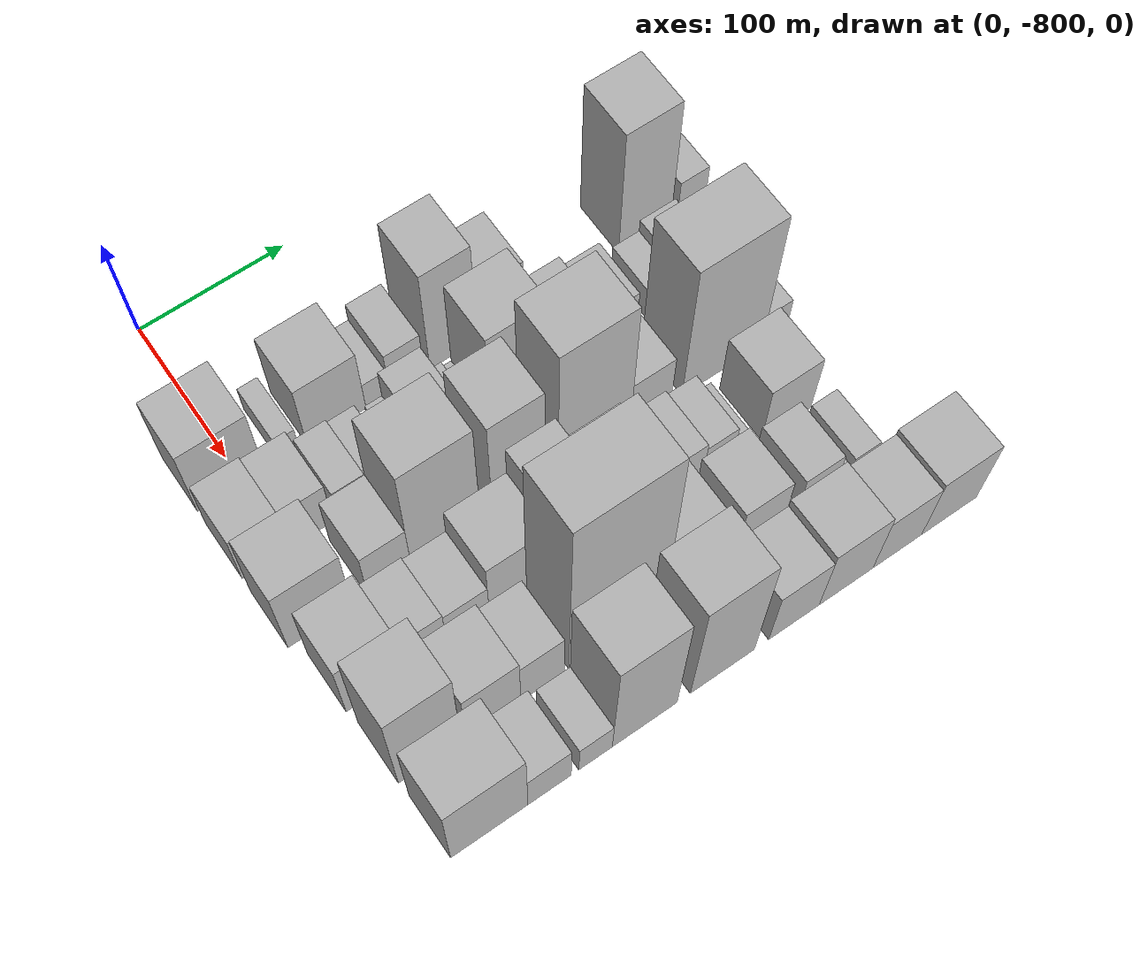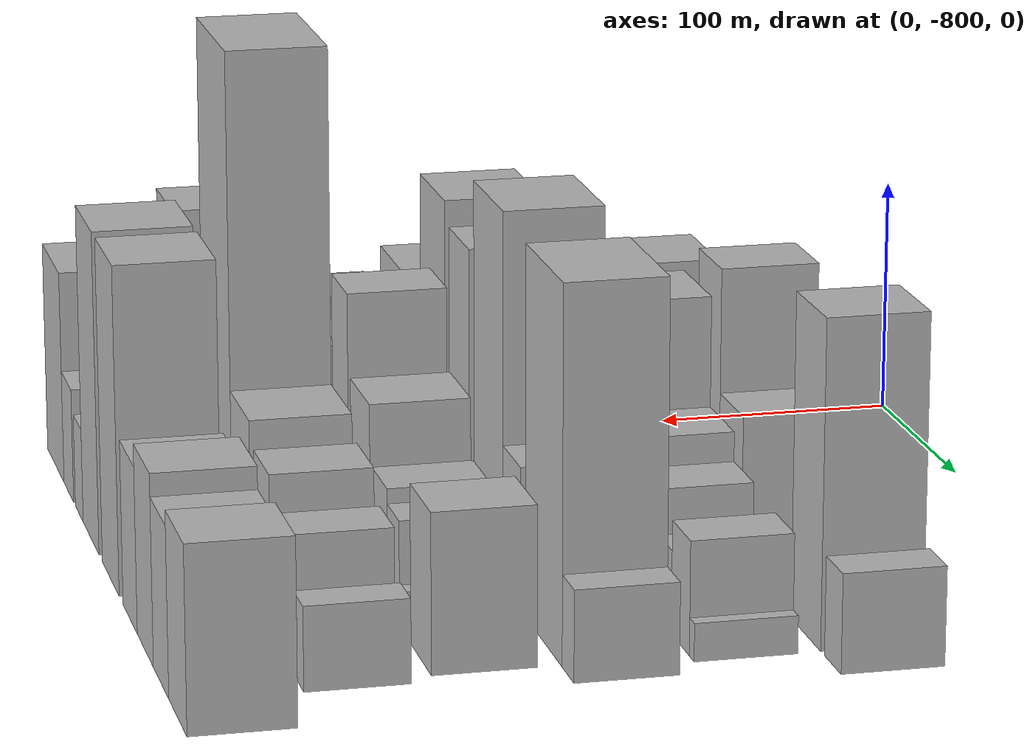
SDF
<sdf version="1.6">
 <world name="default">
  <model name="building_1">
   <static>1</static>
   <pose>100.0000 -807.7736 0 0.000000 0.000000 0.000000</pose>
   <link name="link">
    <pose>0 0 37.50 0 0 0</pose>
    <collision name="collision"><geometry><box><size>40.0000 44.4528 75.0000</size></box></geometry></collision>
    <visual name="visual">
     <cast_shadows>0</cast_shadows>
     <geometry><box><size>40.0000 44.4528 75.0000</size></box></geometry>
     <material>
      <script>
       <uri>model://HANNAS_wall/materials/scripts</uri>
       <uri>model://HANNAS_wall/materials/textures</uri>
       <name>vrc/HANNAS_wall</name>
      </script>
     </material>
    </visual>
   </link>
  </model>
  <model name="building_2">
   <static>1</static>
   <pose>100.0000 -768.8524 0 0.000000 0.000000 0.000000</pose>
   <link name="link">
    <pose>0 0 13.50 0 0 0</pose>
    <collision name="collision"><geometry><box><size>40.0000 13.3897 27.0000</size></box></geometry></collision>
    <visual name="visual">
     <cast_shadows>0</cast_shadows>
     <geometry><box><size>40.0000 13.3897 27.0000</size></box></geometry>
     <material>
      <script>
       <uri>model://HANNAS_wall/materials/scripts</uri>
       <uri>model://HANNAS_wall/materials/textures</uri>
       <name>vrc/HANNAS_wall</name>
      </script>
     </material>
    </visual>
   </link>
  </model>
  <model name="building_3">
   <static>1</static>
   <pose>100.0000 -736.9591 0 0.000000 0.000000 0.000000</pose>
   <link name="link">
    <pose>0 0 34.50 0 0 0</pose>
    <collision name="collision"><geometry><box><size>40.0000 40.3968 69.0000</size></box></geometry></collision>
    <visual name="visual">
     <cast_shadows>0</cast_shadows>
     <geometry><box><size>40.0000 40.3968 69.0000</size></box></geometry>
     <material>
      <script>
       <uri>model://HANNAS_wall/materials/scripts</uri>
       <uri>model://HANNAS_wall/materials/textures</uri>
       <name>vrc/HANNAS_wall</name>
      </script>
     </material>
    </visual>
   </link>
  </model>
  <model name="building_4">
   <static>1</static>
   <pose>100.0000 -708.5903 0 0.000000 0.000000 0.000000</pose>
   <link name="link">
    <pose>0 0 15.00 0 0 0</pose>
    <collision name="collision"><geometry><box><size>40.0000 16.3408 30.0000</size></box></geometry></collision>
    <visual name="visual">
     <cast_shadows>0</cast_shadows>
     <geometry><box><size>40.0000 16.3408 30.0000</size></box></geometry>
     <material>
      <script>
       <uri>model://HANNAS_wall/materials/scripts</uri>
       <uri>model://HANNAS_wall/materials/textures</uri>
       <name>vrc/HANNAS_wall</name>
      </script>
     </material>
    </visual>
   </link>
  </model>
  <model name="building_5">
   <static>1</static>
   <pose>100.0000 -688.3928 0 0.000000 0.000000 0.000000</pose>
   <link name="link">
    <pose>0 0 24.00 0 0 0</pose>
    <collision name="collision"><geometry><box><size>40.0000 24.0543 48.0000</size></box></geometry></collision>
    <visual name="visual">
     <cast_shadows>0</cast_shadows>
     <geometry><box><size>40.0000 24.0543 48.0000</size></box></geometry>
     <material>
      <script>
       <uri>model://HANNAS_wall/materials/scripts</uri>
       <uri>model://HANNAS_wall/materials/textures</uri>
       <name>vrc/HANNAS_wall</name>
      </script>
     </material>
    </visual>
   </link>
  </model>
  <model name="building_6">
   <static>1</static>
   <pose>100.0000 -655.6085 0 0.000000 0.000000 0.000000</pose>
   <link name="link">
    <pose>0 0 55.50 0 0 0</pose>
    <collision name="collision"><geometry><box><size>40.0000 33.5143 111.0000</size></box></geometry></collision>
    <visual name="visual">
     <cast_shadows>0</cast_shadows>
     <geometry><box><size>40.0000 33.5143 111.0000</size></box></geometry>
     <material>
      <script>
       <uri>model://HANNAS_wall/materials/scripts</uri>
       <uri>model://HANNAS_wall/materials/textures</uri>
       <name>vrc/HANNAS_wall</name>
      </script>
     </material>
    </visual>
   </link>
  </model>
  <model name="building_7">
   <static>1</static>
   <pose>100.0000 -622.0648 0 0.000000 0.000000 0.000000</pose>
   <link name="link">
    <pose>0 0 30.00 0 0 0</pose>
    <collision name="collision"><geometry><box><size>40.0000 33.5730 60.0000</size></box></geometry></collision>
    <visual name="visual">
     <cast_shadows>0</cast_shadows>
     <geometry><box><size>40.0000 33.5730 60.0000</size></box></geometry>
     <material>
      <script>
       <uri>model://HANNAS_wall/materials/scripts</uri>
       <uri>model://HANNAS_wall/materials/textures</uri>
       <name>vrc/HANNAS_wall</name>
      </script>
     </material>
    </visual>
   </link>
  </model>
  <model name="building_8">
   <static>1</static>
   <pose>100.0000 -516.9023 0 0.000000 0.000000 0.000000</pose>
   <link name="link">
    <pose>0 0 64.50 0 0 0</pose>
    <collision name="collision"><geometry><box><size>40.0000 38.9173 129.0000</size></box></geometry></collision>
    <visual name="visual">
     <cast_shadows>0</cast_shadows>
     <geometry><box><size>40.0000 38.9173 129.0000</size></box></geometry>
     <material>
      <script>
       <uri>model://HANNAS_wall/materials/scripts</uri>
       <uri>model://HANNAS_wall/materials/textures</uri>
       <name>vrc/HANNAS_wall</name>
      </script>
     </material>
    </visual>
   </link>
  </model>
  <model name="building_9">
   <static>1</static>
   <pose>100.0000 -481.9084 0 0.000000 0.000000 0.000000</pose>
   <link name="link">
    <pose>0 0 19.50 0 0 0</pose>
    <collision name="collision"><geometry><box><size>40.0000 21.0706 39.0000</size></box></geometry></collision>
    <visual name="visual">
     <cast_shadows>0</cast_shadows>
     <geometry><box><size>40.0000 21.0706 39.0000</size></box></geometry>
     <material>
      <script>
       <uri>model://HANNAS_wall/materials/scripts</uri>
       <uri>model://HANNAS_wall/materials/textures</uri>
       <name>vrc/HANNAS_wall</name>
      </script>
     </material>
    </visual>
   </link>
  </model>
  <model name="building_52">
   <static>1</static>
   <pose>149.0000 -814.5044 0 0.000000 0.000000 0.000000</pose>
   <link name="link">
    <pose>0 0 27.00 0 0 0</pose>
    <collision name="collision"><geometry><box><size>40.0000 30.9913 54.0000</size></box></geometry></collision>
    <visual name="visual">
     <cast_shadows>0</cast_shadows>
     <geometry><box><size>40.0000 30.9913 54.0000</size></box></geometry>
     <material>
      <script>
       <uri>model://HANNAS_wall/materials/scripts</uri>
       <uri>model://HANNAS_wall/materials/textures</uri>
       <name>vrc/HANNAS_wall</name>
      </script>
     </material>
    </visual>
   </link>
  </model>
  <model name="building_53">
   <static>1</static>
   <pose>149.0000 -784.4596 0 0.000000 0.000000 0.000000</pose>
   <link name="link">
    <pose>0 0 25.50 0 0 0</pose>
    <collision name="collision"><geometry><box><size>40.0000 29.0982 51.0000</size></box></geometry></collision>
    <visual name="visual">
     <cast_shadows>0</cast_shadows>
     <geometry><box><size>40.0000 29.0982 51.0000</size></box></geometry>
     <material>
      <script>
       <uri>model://HANNAS_wall/materials/scripts</uri>
       <uri>model://HANNAS_wall/materials/textures</uri>
       <name>vrc/HANNAS_wall</name>
      </script>
     </material>
    </visual>
   </link>
  </model>
  <model name="building_54">
   <static>1</static>
   <pose>149.0000 -756.2330 0 0.000000 0.000000 0.000000</pose>
   <link name="link">
    <pose>0 0 18.00 0 0 0</pose>
    <collision name="collision"><geometry><box><size>40.0000 21.3550 36.0000</size></box></geometry></collision>
    <visual name="visual">
     <cast_shadows>0</cast_shadows>
     <geometry><box><size>40.0000 21.3550 36.0000</size></box></geometry>
     <material>
      <script>
       <uri>model://HANNAS_wall/materials/scripts</uri>
       <uri>model://HANNAS_wall/materials/textures</uri>
       <name>vrc/HANNAS_wall</name>
      </script>
     </material>
    </visual>
   </link>
  </model>
  <model name="building_55">
   <static>1</static>
   <pose>149.0000 -736.3124 0 0.000000 0.000000 0.000000</pose>
   <link name="link">
    <pose>0 0 16.50 0 0 0</pose>
    <collision name="collision"><geometry><box><size>40.0000 18.4861 33.0000</size></box></geometry></collision>
    <visual name="visual">
     <cast_shadows>0</cast_shadows>
     <geometry><box><size>40.0000 18.4861 33.0000</size></box></geometry>
     <material>
      <script>
       <uri>model://HANNAS_wall/materials/scripts</uri>
       <uri>model://HANNAS_wall/materials/textures</uri>
       <name>vrc/HANNAS_wall</name>
      </script>
     </material>
    </visual>
   </link>
  </model>
  <model name="building_56">
   <static>1</static>
   <pose>149.0000 -715.2313 0 0.000000 0.000000 0.000000</pose>
   <link name="link">
    <pose>0 0 12.00 0 0 0</pose>
    <collision name="collision"><geometry><box><size>40.0000 11.6762 24.0000</size></box></geometry></collision>
    <visual name="visual">
     <cast_shadows>0</cast_shadows>
     <geometry><box><size>40.0000 11.6762 24.0000</size></box></geometry>
     <material>
      <script>
       <uri>model://HANNAS_wall/materials/scripts</uri>
       <uri>model://HANNAS_wall/materials/textures</uri>
       <name>vrc/HANNAS_wall</name>
      </script>
     </material>
    </visual>
   </link>
  </model>
  <model name="building_57">
   <static>1</static>
   <pose>149.0000 -695.3278 0 0.000000 0.000000 0.000000</pose>
   <link name="link">
    <pose>0 0 27.00 0 0 0</pose>
    <collision name="collision"><geometry><box><size>40.0000 28.1309 54.0000</size></box></geometry></collision>
    <visual name="visual">
     <cast_shadows>0</cast_shadows>
     <geometry><box><size>40.0000 28.1309 54.0000</size></box></geometry>
     <material>
      <script>
       <uri>model://HANNAS_wall/materials/scripts</uri>
       <uri>model://HANNAS_wall/materials/textures</uri>
       <name>vrc/HANNAS_wall</name>
      </script>
     </material>
    </visual>
   </link>
  </model>
  <model name="building_58">
   <static>1</static>
   <pose>149.0000 -673.7232 0 0.000000 0.000000 0.000000</pose>
   <link name="link">
    <pose>0 0 10.50 0 0 0</pose>
    <collision name="collision"><geometry><box><size>40.0000 9.0783 21.0000</size></box></geometry></collision>
    <visual name="visual">
     <cast_shadows>0</cast_shadows>
     <geometry><box><size>40.0000 9.0783 21.0000</size></box></geometry>
     <material>
      <script>
       <uri>model://HANNAS_wall/materials/scripts</uri>
       <uri>model://HANNAS_wall/materials/textures</uri>
       <name>vrc/HANNAS_wall</name>
      </script>
     </material>
    </visual>
   </link>
  </model>
  <model name="building_59">
   <static>1</static>
   <pose>149.0000 -665.8663 0 0.000000 0.000000 0.000000</pose>
   <link name="link">
    <pose>0 0 7.50 0 0 0</pose>
    <collision name="collision"><geometry><box><size>40.0000 6.6355 15.0000</size></box></geometry></collision>
    <visual name="visual">
     <cast_shadows>0</cast_shadows>
     <geometry><box><size>40.0000 6.6355 15.0000</size></box></geometry>
     <material>
      <script>
       <uri>model://HANNAS_wall/materials/scripts</uri>
       <uri>model://HANNAS_wall/materials/textures</uri>
       <name>vrc/HANNAS_wall</name>
      </script>
     </material>
    </visual>
   </link>
  </model>
  <model name="building_60">
   <static>1</static>
   <pose>149.0000 -641.8567 0 0.000000 0.000000 0.000000</pose>
   <link name="link">
    <pose>0 0 52.50 0 0 0</pose>
    <collision name="collision"><geometry><box><size>40.0000 41.3837 105.0000</size></box></geometry></collision>
    <visual name="visual">
     <cast_shadows>0</cast_shadows>
     <geometry><box><size>40.0000 41.3837 105.0000</size></box></geometry>
     <material>
      <script>
       <uri>model://HANNAS_wall/materials/scripts</uri>
       <uri>model://HANNAS_wall/materials/textures</uri>
       <name>vrc/HANNAS_wall</name>
      </script>
     </material>
    </visual>
   </link>
  </model>
  <model name="building_61">
   <static>1</static>
   <pose>149.0000 -603.7978 0 0.000000 0.000000 0.000000</pose>
   <link name="link">
    <pose>0 0 30.00 0 0 0</pose>
    <collision name="collision"><geometry><box><size>40.0000 34.7339 60.0000</size></box></geometry></collision>
    <visual name="visual">
     <cast_shadows>0</cast_shadows>
     <geometry><box><size>40.0000 34.7339 60.0000</size></box></geometry>
     <material>
      <script>
       <uri>model://HANNAS_wall/materials/scripts</uri>
       <uri>model://HANNAS_wall/materials/textures</uri>
       <name>vrc/HANNAS_wall</name>
      </script>
     </material>
    </visual>
   </link>
  </model>
  <model name="building_62">
   <static>1</static>
   <pose>149.0000 -572.4015 0 0.000000 0.000000 0.000000</pose>
   <link name="link">
    <pose>0 0 24.00 0 0 0</pose>
    <collision name="collision"><geometry><box><size>40.0000 28.0587 48.0000</size></box></geometry></collision>
    <visual name="visual">
     <cast_shadows>0</cast_shadows>
     <geometry><box><size>40.0000 28.0587 48.0000</size></box></geometry>
     <material>
      <script>
       <uri>model://HANNAS_wall/materials/scripts</uri>
       <uri>model://HANNAS_wall/materials/textures</uri>
       <name>vrc/HANNAS_wall</name>
      </script>
     </material>
    </visual>
   </link>
  </model>
  <model name="building_63">
   <static>1</static>
   <pose>149.0000 -538.8149 0 0.000000 0.000000 0.000000</pose>
   <link name="link">
    <pose>0 0 16.50 0 0 0</pose>
    <collision name="collision"><geometry><box><size>40.0000 19.1145 33.0000</size></box></geometry></collision>
    <visual name="visual">
     <cast_shadows>0</cast_shadows>
     <geometry><box><size>40.0000 19.1145 33.0000</size></box></geometry>
     <material>
      <script>
       <uri>model://HANNAS_wall/materials/scripts</uri>
       <uri>model://HANNAS_wall/materials/textures</uri>
       <name>vrc/HANNAS_wall</name>
      </script>
     </material>
    </visual>
   </link>
  </model>
  <model name="building_64">
   <static>1</static>
   <pose>149.0000 -516.3591 0 0.000000 0.000000 0.000000</pose>
   <link name="link">
    <pose>0 0 22.50 0 0 0</pose>
    <collision name="collision"><geometry><box><size>40.0000 25.7971 45.0000</size></box></geometry></collision>
    <visual name="visual">
     <cast_shadows>0</cast_shadows>
     <geometry><box><size>40.0000 25.7971 45.0000</size></box></geometry>
     <material>
      <script>
       <uri>model://HANNAS_wall/materials/scripts</uri>
       <uri>model://HANNAS_wall/materials/textures</uri>
       <name>vrc/HANNAS_wall</name>
      </script>
     </material>
    </visual>
   </link>
  </model>
  <model name="building_65">
   <static>1</static>
   <pose>149.0000 -500.1712 0 0.000000 0.000000 0.000000</pose>
   <link name="link">
    <pose>0 0 7.50 0 0 0</pose>
    <collision name="collision"><geometry><box><size>40.0000 6.5786 15.0000</size></box></geometry></collision>
    <visual name="visual">
     <cast_shadows>0</cast_shadows>
     <geometry><box><size>40.0000 6.5786 15.0000</size></box></geometry>
     <material>
      <script>
       <uri>model://HANNAS_wall/materials/scripts</uri>
       <uri>model://HANNAS_wall/materials/textures</uri>
       <name>vrc/HANNAS_wall</name>
      </script>
     </material>
    </visual>
   </link>
  </model>
  <model name="building_107">
   <static>1</static>
   <pose>198.0000 -808.9158 0 0.000000 0.000000 0.000000</pose>
   <link name="link">
    <pose>0 0 39.00 0 0 0</pose>
    <collision name="collision"><geometry><box><size>40.0000 42.1683 78.0000</size></box></geometry></collision>
    <visual name="visual">
     <cast_shadows>0</cast_shadows>
     <geometry><box><size>40.0000 42.1683 78.0000</size></box></geometry>
     <material>
      <script>
       <uri>model://HANNAS_wall/materials/scripts</uri>
       <uri>model://HANNAS_wall/materials/textures</uri>
       <name>vrc/HANNAS_wall</name>
      </script>
     </material>
    </visual>
   </link>
  </model>
  <model name="building_108">
   <static>1</static>
   <pose>198.0000 -763.2630 0 0.000000 0.000000 0.000000</pose>
   <link name="link">
    <pose>0 0 28.50 0 0 0</pose>
    <collision name="collision"><geometry><box><size>40.0000 29.1372 57.0000</size></box></geometry></collision>
    <visual name="visual">
     <cast_shadows>0</cast_shadows>
     <geometry><box><size>40.0000 29.1372 57.0000</size></box></geometry>
     <material>
      <script>
       <uri>model://HANNAS_wall/materials/scripts</uri>
       <uri>model://HANNAS_wall/materials/textures</uri>
       <name>vrc/HANNAS_wall</name>
      </script>
     </material>
    </visual>
   </link>
  </model>
  <model name="building_109">
   <static>1</static>
   <pose>198.0000 -725.3623 0 0.000000 0.000000 0.000000</pose>
   <link name="link">
    <pose>0 0 64.50 0 0 0</pose>
    <collision name="collision"><geometry><box><size>40.0000 46.6643 129.0000</size></box></geometry></collision>
    <visual name="visual">
     <cast_shadows>0</cast_shadows>
     <geometry><box><size>40.0000 46.6643 129.0000</size></box></geometry>
     <material>
      <script>
       <uri>model://HANNAS_wall/materials/scripts</uri>
       <uri>model://HANNAS_wall/materials/textures</uri>
       <name>vrc/HANNAS_wall</name>
      </script>
     </material>
    </visual>
   </link>
  </model>
  <model name="building_110">
   <static>1</static>
   <pose>198.0000 -675.9680 0 0.000000 0.000000 0.000000</pose>
   <link name="link">
    <pose>0 0 60.00 0 0 0</pose>
    <collision name="collision"><geometry><box><size>40.0000 36.1243 120.0000</size></box></geometry></collision>
    <visual name="visual">
     <cast_shadows>0</cast_shadows>
     <geometry><box><size>40.0000 36.1243 120.0000</size></box></geometry>
     <material>
      <script>
       <uri>model://HANNAS_wall/materials/scripts</uri>
       <uri>model://HANNAS_wall/materials/textures</uri>
       <name>vrc/HANNAS_wall</name>
      </script>
     </material>
    </visual>
   </link>
  </model>
  <model name="building_111">
   <static>1</static>
   <pose>198.0000 -623.5885 0 0.000000 0.000000 0.000000</pose>
   <link name="link">
    <pose>0 0 75.00 0 0 0</pose>
    <collision name="collision"><geometry><box><size>40.0000 50.6347 150.0000</size></box></geometry></collision>
    <visual name="visual">
     <cast_shadows>0</cast_shadows>
     <geometry><box><size>40.0000 50.6347 150.0000</size></box></geometry>
     <material>
      <script>
       <uri>model://HANNAS_wall/materials/scripts</uri>
       <uri>model://HANNAS_wall/materials/textures</uri>
       <name>vrc/HANNAS_wall</name>
      </script>
     </material>
    </visual>
   </link>
  </model>
  <model name="building_112">
   <static>1</static>
   <pose>198.0000 -583.6322 0 0.000000 0.000000 0.000000</pose>
   <link name="link">
    <pose>0 0 28.50 0 0 0</pose>
    <collision name="collision"><geometry><box><size>40.0000 29.2778 57.0000</size></box></geometry></collision>
    <visual name="visual">
     <cast_shadows>0</cast_shadows>
     <geometry><box><size>40.0000 29.2778 57.0000</size></box></geometry>
     <material>
      <script>
       <uri>model://HANNAS_wall/materials/scripts</uri>
       <uri>model://HANNAS_wall/materials/textures</uri>
       <name>vrc/HANNAS_wall</name>
      </script>
     </material>
    </visual>
   </link>
  </model>
  <model name="building_113">
   <static>1</static>
   <pose>198.0000 -531.6468 0 0.000000 0.000000 0.000000</pose>
   <link name="link">
    <pose>0 0 73.50 0 0 0</pose>
    <collision name="collision"><geometry><box><size>40.0000 58.6928 147.0000</size></box></geometry></collision>
    <visual name="visual">
     <cast_shadows>0</cast_shadows>
     <geometry><box><size>40.0000 58.6928 147.0000</size></box></geometry>
     <material>
      <script>
       <uri>model://HANNAS_wall/materials/scripts</uri>
       <uri>model://HANNAS_wall/materials/textures</uri>
       <name>vrc/HANNAS_wall</name>
      </script>
     </material>
    </visual>
   </link>
  </model>
  <model name="building_114">
   <static>1</static>
   <pose>198.0000 -493.2641 0 0.000000 0.000000 0.000000</pose>
   <link name="link">
    <pose>0 0 18.00 0 0 0</pose>
    <collision name="collision"><geometry><box><size>40.0000 18.0727 36.0000</size></box></geometry></collision>
    <visual name="visual">
     <cast_shadows>0</cast_shadows>
     <geometry><box><size>40.0000 18.0727 36.0000</size></box></geometry>
     <material>
      <script>
       <uri>model://HANNAS_wall/materials/scripts</uri>
       <uri>model://HANNAS_wall/materials/textures</uri>
       <name>vrc/HANNAS_wall</name>
      </script>
     </material>
    </visual>
   </link>
  </model>
  <model name="building_158">
   <static>1</static>
   <pose>247.0000 -804.5287 0 0.000000 0.000000 0.000000</pose>
   <link name="link">
    <pose>0 0 34.50 0 0 0</pose>
    <collision name="collision"><geometry><box><size>40.0000 36.9425 69.0000</size></box></geometry></collision>
    <visual name="visual">
     <cast_shadows>0</cast_shadows>
     <geometry><box><size>40.0000 36.9425 69.0000</size></box></geometry>
     <material>
      <script>
       <uri>model://HANNAS_wall/materials/scripts</uri>
       <uri>model://HANNAS_wall/materials/textures</uri>
       <name>vrc/HANNAS_wall</name>
      </script>
     </material>
    </visual>
   </link>
  </model>
  <model name="building_159">
   <static>1</static>
   <pose>247.0000 -771.7915 0 0.000000 0.000000 0.000000</pose>
   <link name="link">
    <pose>0 0 25.50 0 0 0</pose>
    <collision name="collision"><geometry><box><size>40.0000 28.5320 51.0000</size></box></geometry></collision>
    <visual name="visual">
     <cast_shadows>0</cast_shadows>
     <geometry><box><size>40.0000 28.5320 51.0000</size></box></geometry>
     <material>
      <script>
       <uri>model://HANNAS_wall/materials/scripts</uri>
       <uri>model://HANNAS_wall/materials/textures</uri>
       <name>vrc/HANNAS_wall</name>
      </script>
     </material>
    </visual>
   </link>
  </model>
  <model name="building_160">
   <static>1</static>
   <pose>247.0000 -743.3118 0 0.000000 0.000000 0.000000</pose>
   <link name="link">
    <pose>0 0 24.00 0 0 0</pose>
    <collision name="collision"><geometry><box><size>40.0000 28.4275 48.0000</size></box></geometry></collision>
    <visual name="visual">
     <cast_shadows>0</cast_shadows>
     <geometry><box><size>40.0000 28.4275 48.0000</size></box></geometry>
     <material>
      <script>
       <uri>model://HANNAS_wall/materials/scripts</uri>
       <uri>model://HANNAS_wall/materials/textures</uri>
       <name>vrc/HANNAS_wall</name>
      </script>
     </material>
    </visual>
   </link>
  </model>
  <model name="building_161">
   <static>1</static>
   <pose>247.0000 -709.0145 0 0.000000 0.000000 0.000000</pose>
   <link name="link">
    <pose>0 0 37.50 0 0 0</pose>
    <collision name="collision"><geometry><box><size>40.0000 40.1672 75.0000</size></box></geometry></collision>
    <visual name="visual">
     <cast_shadows>0</cast_shadows>
     <geometry><box><size>40.0000 40.1672 75.0000</size></box></geometry>
     <material>
      <script>
       <uri>model://HANNAS_wall/materials/scripts</uri>
       <uri>model://HANNAS_wall/materials/textures</uri>
       <name>vrc/HANNAS_wall</name>
      </script>
     </material>
    </visual>
   </link>
  </model>
  <model name="building_162">
   <static>1</static>
   <pose>247.0000 -673.1171 0 0.000000 0.000000 0.000000</pose>
   <link name="link">
    <pose>0 0 52.50 0 0 0</pose>
    <collision name="collision"><geometry><box><size>40.0000 31.6276 105.0000</size></box></geometry></collision>
    <visual name="visual">
     <cast_shadows>0</cast_shadows>
     <geometry><box><size>40.0000 31.6276 105.0000</size></box></geometry>
     <material>
      <script>
       <uri>model://HANNAS_wall/materials/scripts</uri>
       <uri>model://HANNAS_wall/materials/textures</uri>
       <name>vrc/HANNAS_wall</name>
      </script>
     </material>
    </visual>
   </link>
  </model>
  <model name="building_163">
   <static>1</static>
   <pose>247.0000 -633.6280 0 0.000000 0.000000 0.000000</pose>
   <link name="link">
    <pose>0 0 36.00 0 0 0</pose>
    <collision name="collision"><geometry><box><size>40.0000 37.3506 72.0000</size></box></geometry></collision>
    <visual name="visual">
     <cast_shadows>0</cast_shadows>
     <geometry><box><size>40.0000 37.3506 72.0000</size></box></geometry>
     <material>
      <script>
       <uri>model://HANNAS_wall/materials/scripts</uri>
       <uri>model://HANNAS_wall/materials/textures</uri>
       <name>vrc/HANNAS_wall</name>
      </script>
     </material>
    </visual>
   </link>
  </model>
  <model name="building_164">
   <static>1</static>
   <pose>247.0000 -596.6864 0 0.000000 0.000000 0.000000</pose>
   <link name="link">
    <pose>0 0 24.00 0 0 0</pose>
    <collision name="collision"><geometry><box><size>40.0000 28.5326 48.0000</size></box></geometry></collision>
    <visual name="visual">
     <cast_shadows>0</cast_shadows>
     <geometry><box><size>40.0000 28.5326 48.0000</size></box></geometry>
     <material>
      <script>
       <uri>model://HANNAS_wall/materials/scripts</uri>
       <uri>model://HANNAS_wall/materials/textures</uri>
       <name>vrc/HANNAS_wall</name>
      </script>
     </material>
    </visual>
   </link>
  </model>
  <model name="building_165">
   <static>1</static>
   <pose>247.0000 -571.5373 0 0.000000 0.000000 0.000000</pose>
   <link name="link">
    <pose>0 0 21.00 0 0 0</pose>
    <collision name="collision"><geometry><box><size>40.0000 21.7656 42.0000</size></box></geometry></collision>
    <visual name="visual">
     <cast_shadows>0</cast_shadows>
     <geometry><box><size>40.0000 21.7656 42.0000</size></box></geometry>
     <material>
      <script>
       <uri>model://HANNAS_wall/materials/scripts</uri>
       <uri>model://HANNAS_wall/materials/textures</uri>
       <name>vrc/HANNAS_wall</name>
      </script>
     </material>
    </visual>
   </link>
  </model>
  <model name="building_166">
   <static>1</static>
   <pose>247.0000 -552.4809 0 0.000000 0.000000 0.000000</pose>
   <link name="link">
    <pose>0 0 9.00 0 0 0</pose>
    <collision name="collision"><geometry><box><size>40.0000 8.3473 18.0000</size></box></geometry></collision>
    <visual name="visual">
     <cast_shadows>0</cast_shadows>
     <geometry><box><size>40.0000 8.3473 18.0000</size></box></geometry>
     <material>
      <script>
       <uri>model://HANNAS_wall/materials/scripts</uri>
       <uri>model://HANNAS_wall/materials/textures</uri>
       <name>vrc/HANNAS_wall</name>
      </script>
     </material>
    </visual>
   </link>
  </model>
  <model name="building_167">
   <static>1</static>
   <pose>247.0000 -522.2415 0 0.000000 0.000000 0.000000</pose>
   <link name="link">
    <pose>0 0 31.50 0 0 0</pose>
    <collision name="collision"><geometry><box><size>40.0000 36.1315 63.0000</size></box></geometry></collision>
    <visual name="visual">
     <cast_shadows>0</cast_shadows>
     <geometry><box><size>40.0000 36.1315 63.0000</size></box></geometry>
     <material>
      <script>
       <uri>model://HANNAS_wall/materials/scripts</uri>
       <uri>model://HANNAS_wall/materials/textures</uri>
       <name>vrc/HANNAS_wall</name>
      </script>
     </material>
    </visual>
   </link>
  </model>
  <model name="building_204">
   <static>1</static>
   <pose>296.0000 -800.7549 0 0.000000 0.000000 0.000000</pose>
   <link name="link">
    <pose>0 0 55.50 0 0 0</pose>
    <collision name="collision"><geometry><box><size>40.0000 40.4901 111.0000</size></box></geometry></collision>
    <visual name="visual">
     <cast_shadows>0</cast_shadows>
     <geometry><box><size>40.0000 40.4901 111.0000</size></box></geometry>
     <material>
      <script>
       <uri>model://HANNAS_wall/materials/scripts</uri>
       <uri>model://HANNAS_wall/materials/textures</uri>
       <name>vrc/HANNAS_wall</name>
      </script>
     </material>
    </visual>
   </link>
  </model>
  <model name="building_205">
   <static>1</static>
   <pose>296.0000 -759.6048 0 0.000000 0.000000 0.000000</pose>
   <link name="link">
    <pose>0 0 33.00 0 0 0</pose>
    <collision name="collision"><geometry><box><size>40.0000 35.8101 66.0000</size></box></geometry></collision>
    <visual name="visual">
     <cast_shadows>0</cast_shadows>
     <geometry><box><size>40.0000 35.8101 66.0000</size></box></geometry>
     <material>
      <script>
       <uri>model://HANNAS_wall/materials/scripts</uri>
       <uri>model://HANNAS_wall/materials/textures</uri>
       <name>vrc/HANNAS_wall</name>
      </script>
     </material>
    </visual>
   </link>
  </model>
  <model name="building_206">
   <static>1</static>
   <pose>296.0000 -727.3717 0 0.000000 0.000000 0.000000</pose>
   <link name="link">
    <pose>0 0 28.50 0 0 0</pose>
    <collision name="collision"><geometry><box><size>40.0000 28.6562 57.0000</size></box></geometry></collision>
    <visual name="visual">
     <cast_shadows>0</cast_shadows>
     <geometry><box><size>40.0000 28.6562 57.0000</size></box></geometry>
     <material>
      <script>
       <uri>model://HANNAS_wall/materials/scripts</uri>
       <uri>model://HANNAS_wall/materials/textures</uri>
       <name>vrc/HANNAS_wall</name>
      </script>
     </material>
    </visual>
   </link>
  </model>
  <model name="building_207">
   <static>1</static>
   <pose>296.0000 -677.7748 0 0.000000 0.000000 0.000000</pose>
   <link name="link">
    <pose>0 0 103.50 0 0 0</pose>
    <collision name="collision"><geometry><box><size>40.0000 64.5375 207.0000</size></box></geometry></collision>
    <visual name="visual">
     <cast_shadows>0</cast_shadows>
     <geometry><box><size>40.0000 64.5375 207.0000</size></box></geometry>
     <material>
      <script>
       <uri>model://HANNAS_wall/materials/scripts</uri>
       <uri>model://HANNAS_wall/materials/textures</uri>
       <name>vrc/HANNAS_wall</name>
      </script>
     </material>
    </visual>
   </link>
  </model>
  <model name="building_208">
   <static>1</static>
   <pose>296.0000 -624.8883 0 0.000000 0.000000 0.000000</pose>
   <link name="link">
    <pose>0 0 36.00 0 0 0</pose>
    <collision name="collision"><geometry><box><size>40.0000 41.2356 72.0000</size></box></geometry></collision>
    <visual name="visual">
     <cast_shadows>0</cast_shadows>
     <geometry><box><size>40.0000 41.2356 72.0000</size></box></geometry>
     <material>
      <script>
       <uri>model://HANNAS_wall/materials/scripts</uri>
       <uri>model://HANNAS_wall/materials/textures</uri>
       <name>vrc/HANNAS_wall</name>
      </script>
     </material>
    </visual>
   </link>
  </model>
  <model name="building_209">
   <static>1</static>
   <pose>296.0000 -579.0632 0 0.000000 0.000000 0.000000</pose>
   <link name="link">
    <pose>0 0 31.50 0 0 0</pose>
    <collision name="collision"><geometry><box><size>40.0000 32.4146 63.0000</size></box></geometry></collision>
    <visual name="visual">
     <cast_shadows>0</cast_shadows>
     <geometry><box><size>40.0000 32.4146 63.0000</size></box></geometry>
     <material>
      <script>
       <uri>model://HANNAS_wall/materials/scripts</uri>
       <uri>model://HANNAS_wall/materials/textures</uri>
       <name>vrc/HANNAS_wall</name>
      </script>
     </material>
    </visual>
   </link>
  </model>
  <model name="building_210">
   <static>1</static>
   <pose>296.0000 -556.3377 0 0.000000 0.000000 0.000000</pose>
   <link name="link">
    <pose>0 0 7.50 0 0 0</pose>
    <collision name="collision"><geometry><box><size>40.0000 7.0365 15.0000</size></box></geometry></collision>
    <visual name="visual">
     <cast_shadows>0</cast_shadows>
     <geometry><box><size>40.0000 7.0365 15.0000</size></box></geometry>
     <material>
      <script>
       <uri>model://HANNAS_wall/materials/scripts</uri>
       <uri>model://HANNAS_wall/materials/textures</uri>
       <name>vrc/HANNAS_wall</name>
      </script>
     </material>
    </visual>
   </link>
  </model>
  <model name="building_211">
   <static>1</static>
   <pose>296.0000 -539.3824 0 0.000000 0.000000 0.000000</pose>
   <link name="link">
    <pose>0 0 25.50 0 0 0</pose>
    <collision name="collision"><geometry><box><size>40.0000 26.8741 51.0000</size></box></geometry></collision>
    <visual name="visual">
     <cast_shadows>0</cast_shadows>
     <geometry><box><size>40.0000 26.8741 51.0000</size></box></geometry>
     <material>
      <script>
       <uri>model://HANNAS_wall/materials/scripts</uri>
       <uri>model://HANNAS_wall/materials/textures</uri>
       <name>vrc/HANNAS_wall</name>
      </script>
     </material>
    </visual>
   </link>
  </model>
  <model name="building_212">
   <static>1</static>
   <pose>296.0000 -520.7177 0 0.000000 0.000000 0.000000</pose>
   <link name="link">
    <pose>0 0 10.50 0 0 0</pose>
    <collision name="collision"><geometry><box><size>40.0000 10.4553 21.0000</size></box></geometry></collision>
    <visual name="visual">
     <cast_shadows>0</cast_shadows>
     <geometry><box><size>40.0000 10.4553 21.0000</size></box></geometry>
     <material>
      <script>
       <uri>model://HANNAS_wall/materials/scripts</uri>
       <uri>model://HANNAS_wall/materials/textures</uri>
       <name>vrc/HANNAS_wall</name>
      </script>
     </material>
    </visual>
   </link>
  </model>
  <model name="building_213">
   <static>1</static>
   <pose>296.0000 -506.3857 0 0.000000 0.000000 0.000000</pose>
   <link name="link">
    <pose>0 0 16.50 0 0 0</pose>
    <collision name="collision"><geometry><box><size>40.0000 18.2086 33.0000</size></box></geometry></collision>
    <visual name="visual">
     <cast_shadows>0</cast_shadows>
     <geometry><box><size>40.0000 18.2086 33.0000</size></box></geometry>
     <material>
      <script>
       <uri>model://HANNAS_wall/materials/scripts</uri>
       <uri>model://HANNAS_wall/materials/textures</uri>
       <name>vrc/HANNAS_wall</name>
      </script>
     </material>
    </visual>
   </link>
  </model>
  <model name="building_253">
   <static>1</static>
   <pose>345.0000 -795.3575 0 0.000000 0.000000 0.000000</pose>
   <link name="link">
    <pose>0 0 45.00 0 0 0</pose>
    <collision name="collision"><geometry><box><size>40.0000 49.2850 90.0000</size></box></geometry></collision>
    <visual name="visual">
     <cast_shadows>0</cast_shadows>
     <geometry><box><size>40.0000 49.2850 90.0000</size></box></geometry>
     <material>
      <script>
       <uri>model://HANNAS_wall/materials/scripts</uri>
       <uri>model://HANNAS_wall/materials/textures</uri>
       <name>vrc/HANNAS_wall</name>
      </script>
     </material>
    </visual>
   </link>
  </model>
  <model name="building_254">
   <static>1</static>
   <pose>345.0000 -756.7177 0 0.000000 0.000000 0.000000</pose>
   <link name="link">
    <pose>0 0 24.00 0 0 0</pose>
    <collision name="collision"><geometry><box><size>40.0000 27.9946 48.0000</size></box></geometry></collision>
    <visual name="visual">
     <cast_shadows>0</cast_shadows>
     <geometry><box><size>40.0000 27.9946 48.0000</size></box></geometry>
     <material>
      <script>
       <uri>model://HANNAS_wall/materials/scripts</uri>
       <uri>model://HANNAS_wall/materials/textures</uri>
       <name>vrc/HANNAS_wall</name>
      </script>
     </material>
    </visual>
   </link>
  </model>
  <model name="building_255">
   <static>1</static>
   <pose>345.0000 -726.7449 0 0.000000 0.000000 0.000000</pose>
   <link name="link">
    <pose>0 0 19.50 0 0 0</pose>
    <collision name="collision"><geometry><box><size>40.0000 21.9511 39.0000</size></box></geometry></collision>
    <visual name="visual">
     <cast_shadows>0</cast_shadows>
     <geometry><box><size>40.0000 21.9511 39.0000</size></box></geometry>
     <material>
      <script>
       <uri>model://HANNAS_wall/materials/scripts</uri>
       <uri>model://HANNAS_wall/materials/textures</uri>
       <name>vrc/HANNAS_wall</name>
      </script>
     </material>
    </visual>
   </link>
  </model>
  <model name="building_256">
   <static>1</static>
   <pose>345.0000 -694.1072 0 0.000000 0.000000 0.000000</pose>
   <link name="link">
    <pose>0 0 66.00 0 0 0</pose>
    <collision name="collision"><geometry><box><size>40.0000 43.3242 132.0000</size></box></geometry></collision>
    <visual name="visual">
     <cast_shadows>0</cast_shadows>
     <geometry><box><size>40.0000 43.3242 132.0000</size></box></geometry>
     <material>
      <script>
       <uri>model://HANNAS_wall/materials/scripts</uri>
       <uri>model://HANNAS_wall/materials/textures</uri>
       <name>vrc/HANNAS_wall</name>
      </script>
     </material>
    </visual>
   </link>
  </model>
  <model name="building_257">
   <static>1</static>
   <pose>345.0000 -641.6335 0 0.000000 0.000000 0.000000</pose>
   <link name="link">
    <pose>0 0 66.00 0 0 0</pose>
    <collision name="collision"><geometry><box><size>40.0000 43.6233 132.0000</size></box></geometry></collision>
    <visual name="visual">
     <cast_shadows>0</cast_shadows>
     <geometry><box><size>40.0000 43.6233 132.0000</size></box></geometry>
     <material>
      <script>
       <uri>model://HANNAS_wall/materials/scripts</uri>
       <uri>model://HANNAS_wall/materials/textures</uri>
       <name>vrc/HANNAS_wall</name>
      </script>
     </material>
    </visual>
   </link>
  </model>
  <model name="building_258">
   <static>1</static>
   <pose>345.0000 -592.2161 0 0.000000 0.000000 0.000000</pose>
   <link name="link">
    <pose>0 0 33.00 0 0 0</pose>
    <collision name="collision"><geometry><box><size>40.0000 35.2117 66.0000</size></box></geometry></collision>
    <visual name="visual">
     <cast_shadows>0</cast_shadows>
     <geometry><box><size>40.0000 35.2117 66.0000</size></box></geometry>
     <material>
      <script>
       <uri>model://HANNAS_wall/materials/scripts</uri>
       <uri>model://HANNAS_wall/materials/textures</uri>
       <name>vrc/HANNAS_wall</name>
      </script>
     </material>
    </visual>
   </link>
  </model>
  <model name="building_259">
   <static>1</static>
   <pose>345.0000 -555.5043 0 0.000000 0.000000 0.000000</pose>
   <link name="link">
    <pose>0 0 37.50 0 0 0</pose>
    <collision name="collision"><geometry><box><size>40.0000 38.2119 75.0000</size></box></geometry></collision>
    <visual name="visual">
     <cast_shadows>0</cast_shadows>
     <geometry><box><size>40.0000 38.2119 75.0000</size></box></geometry>
     <material>
      <script>
       <uri>model://HANNAS_wall/materials/scripts</uri>
       <uri>model://HANNAS_wall/materials/textures</uri>
       <name>vrc/HANNAS_wall</name>
      </script>
     </material>
    </visual>
   </link>
  </model>
  <model name="building_260">
   <static>1</static>
   <pose>345.0000 -518.8193 0 0.000000 0.000000 0.000000</pose>
   <link name="link">
    <pose>0 0 33.00 0 0 0</pose>
    <collision name="collision"><geometry><box><size>40.0000 35.1581 66.0000</size></box></geometry></collision>
    <visual name="visual">
     <cast_shadows>0</cast_shadows>
     <geometry><box><size>40.0000 35.1581 66.0000</size></box></geometry>
     <material>
      <script>
       <uri>model://HANNAS_wall/materials/scripts</uri>
       <uri>model://HANNAS_wall/materials/textures</uri>
       <name>vrc/HANNAS_wall</name>
      </script>
     </material>
    </visual>
   </link>
  </model>
  <model name="building_261">
   <static>1</static>
   <pose>345.0000 -481.1956 0 0.000000 0.000000 0.000000</pose>
   <link name="link">
    <pose>0 0 36.00 0 0 0</pose>
    <collision name="collision"><geometry><box><size>40.0000 40.0893 72.0000</size></box></geometry></collision>
    <visual name="visual">
     <cast_shadows>0</cast_shadows>
     <geometry><box><size>40.0000 40.0893 72.0000</size></box></geometry>
     <material>
      <script>
       <uri>model://HANNAS_wall/materials/scripts</uri>
       <uri>model://HANNAS_wall/materials/textures</uri>
       <name>vrc/HANNAS_wall</name>
      </script>
     </material>
    </visual>
   </link>
  </model>
 </world>
</sdf>
